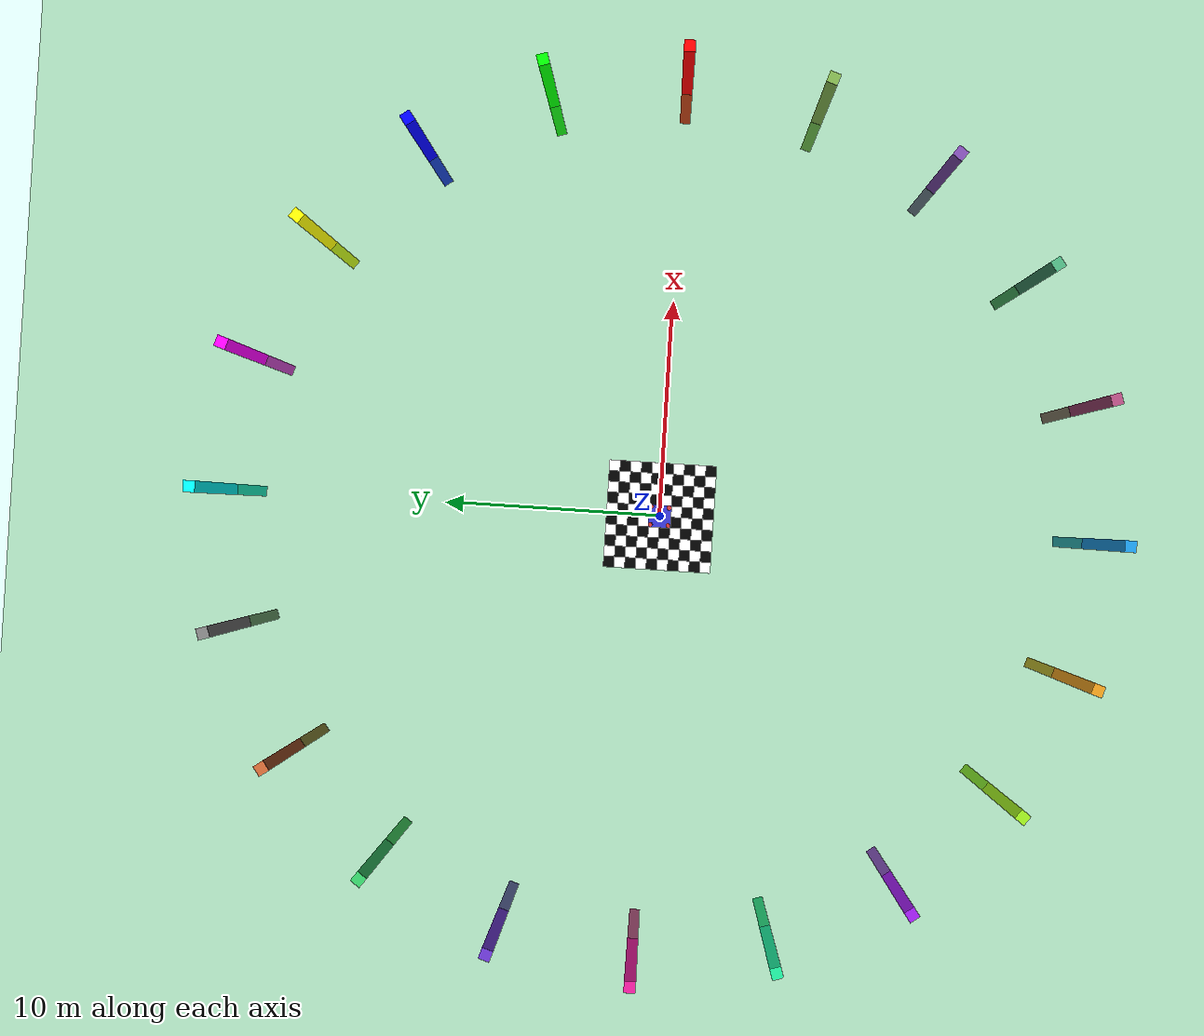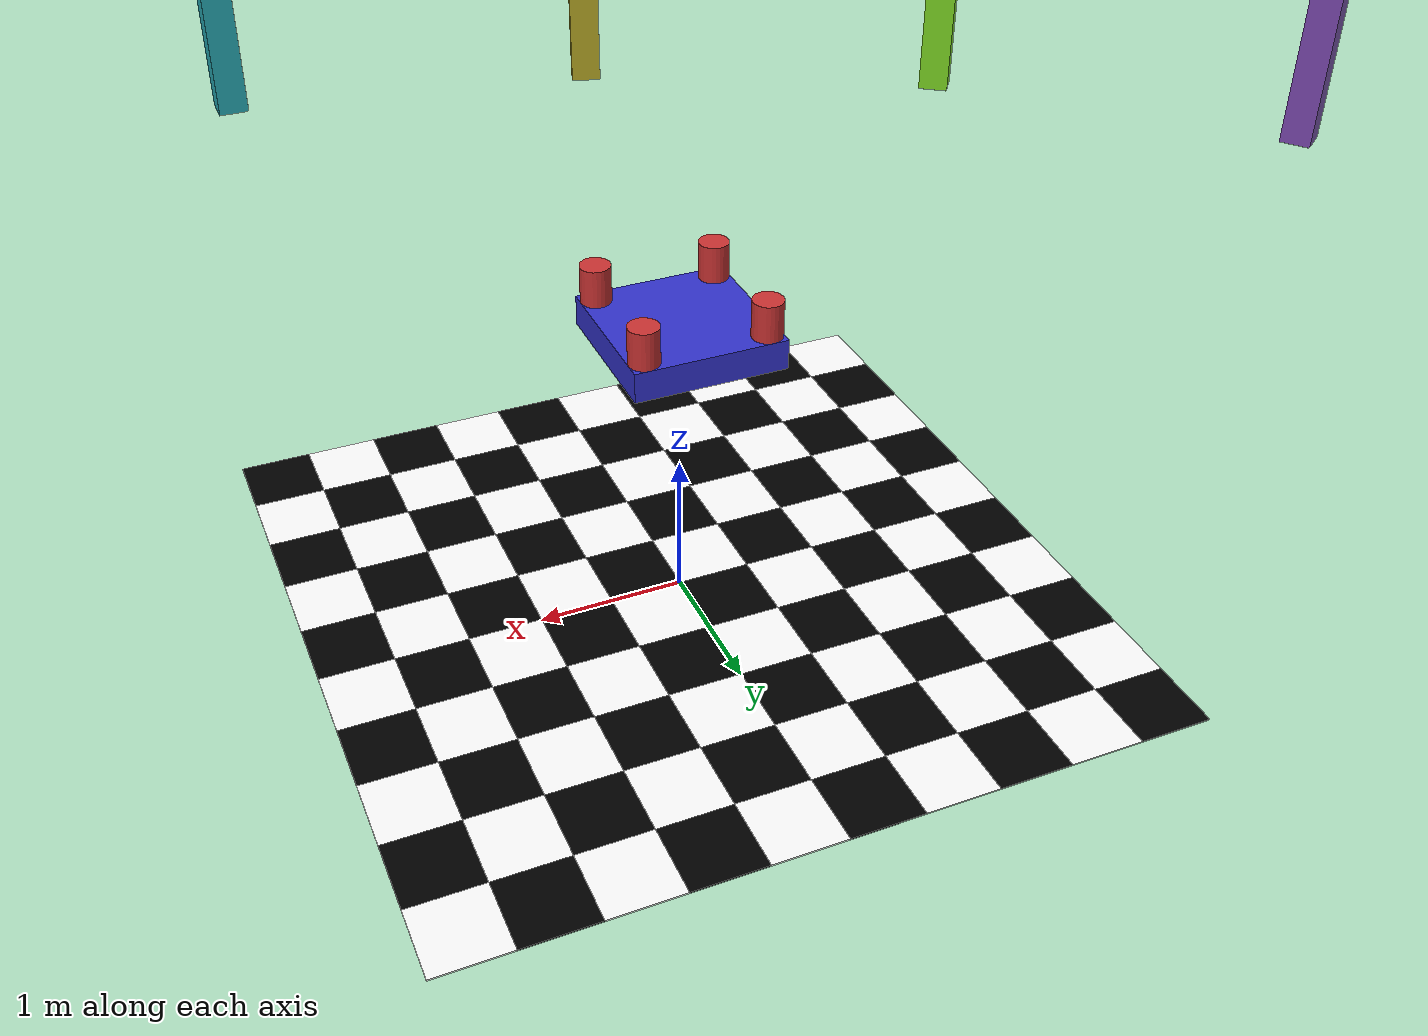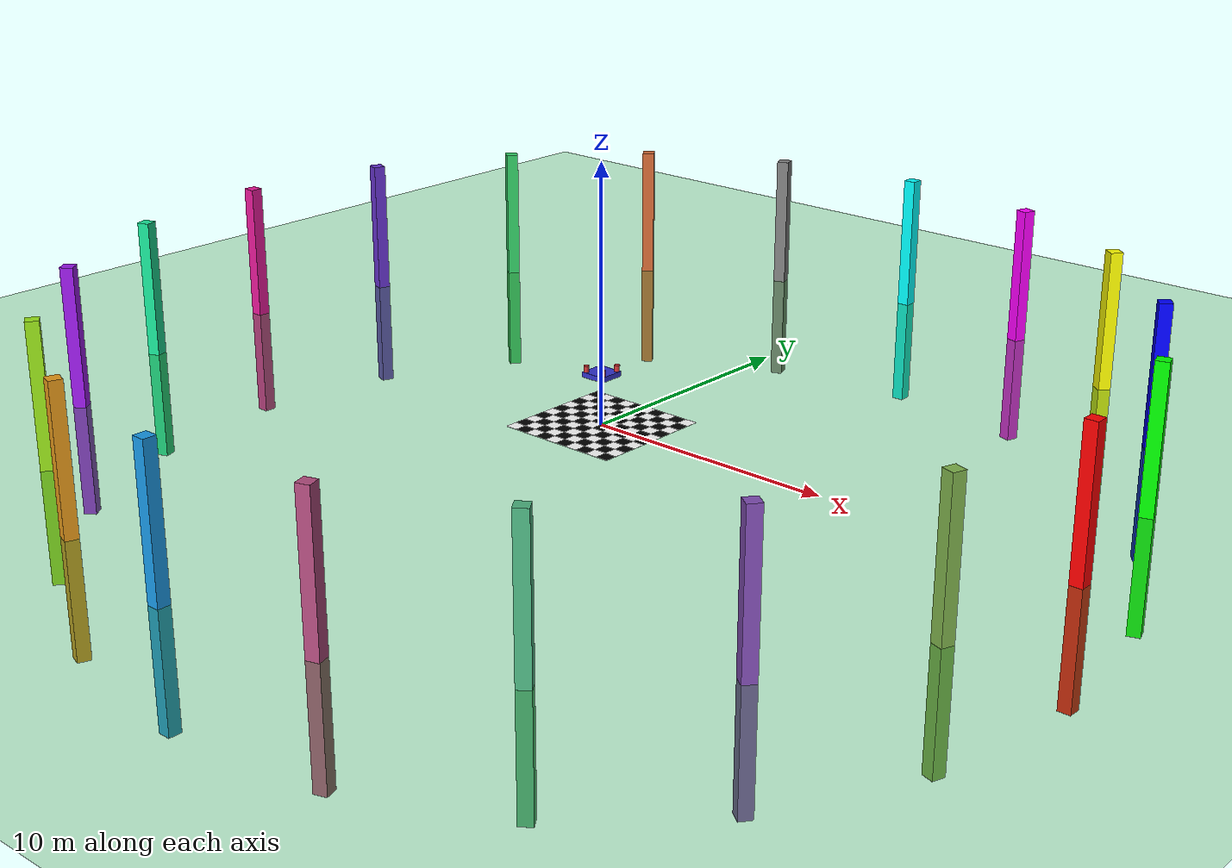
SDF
<?xml version="1.0" ?>
<sdf version="1.8">
  <world name="movable_shapes_world">

  <light type="directional" name="sun">
          <cast_shadows>true</cast_shadows>
          <pose>0 0 10 0 0 0</pose>
          <diffuse>0.8 0.8 0.8 1</diffuse>
          <specular>0.2 0.2 0.2 1</specular>
          <attenuation>
            <range>1000</range>
            <constant>0.9</constant>
            <linear>0.01</linear>
            <quadratic>0.001</quadratic>
          </attenuation>
          <direction>-0.5 0.1 -0.9</direction>
     </light>
    <include>
  <uri>https://fuel.gazebosim.org/1.0/OpenRobotics/models/ground plane</uri>
</include>
    <physics name="1ms" type="ignored">
      <max_step_size>0.01</max_step_size>
      <real_time_factor>1</real_time_factor>
      <real_time_update_rate>100</real_time_update_rate>
    </physics>
    <gravity>0 0 -9.8</gravity>

    <plugin filename="gz-sim-physics-system" name="gz::sim::systems::Physics">
    </plugin>
    <plugin filename="gz-sim-scene-broadcaster-system" name="gz::sim::systems::SceneBroadcaster">
    </plugin>
    <plugin filename="gz-sim-apply-link-wrench-system" name="gz::sim::systems::ApplyLinkWrench">
    </plugin>
    <plugin filename="gz-sim-imu-system" name="gz::sim::systems::Imu"></plugin>
    <plugin filename ="gz-sim-sensors-system"
            name="gz::sim::systems::Sensors">
          </plugin>

        <!-- Solid green ground base -->
<model name="grass_ground">
  <static>true</static>
  <link name="link">
    <collision name="collision">
      <geometry>
        <plane>
          <normal>0 0 1</normal>
          <size>100 100</size>
        </plane>
      </geometry>
    </collision>
    <visual name="visual">
      <geometry>
        <plane>
          <normal>0 0 1</normal>
          <size>100 100</size>
        </plane>
      </geometry>
      <material>
        <ambient>0.1 0.4 0.1 1</ambient>
        <diffuse>0.2 0.6 0.2 1</diffuse>
      </material>
    </visual>
  </link>
</model>

<!-- Checkerboard pattern made of tiny boxes -->
<model name="checkerboard_ground">
  <static>true</static>

  <!-- Row 0 (y = -2.25) -->
<link name="tile_0_0"><pose>-2.25 -2.25 0.005 0 0 0</pose><visual name="vis"><geometry><box><size>0.5 0.5 0.01</size></box></geometry><material><ambient>1 1 1 1</ambient><diffuse>1 1 1 1</diffuse></material></visual></link>
<link name="tile_0_1"><pose>-1.75 -2.25 0.005 0 0 0</pose><visual name="vis"><geometry><box><size>0.5 0.5 0.01</size></box></geometry><material><ambient>0 0 0 1</ambient><diffuse>0 0 0 1</diffuse></material></visual></link>
<link name="tile_0_2"><pose>-1.25 -2.25 0.005 0 0 0</pose><visual name="vis"><geometry><box><size>0.5 0.5 0.01</size></box></geometry><material><ambient>1 1 1 1</ambient><diffuse>1 1 1 1</diffuse></material></visual></link>
<link name="tile_0_3"><pose>-0.75 -2.25 0.005 0 0 0</pose><visual name="vis"><geometry><box><size>0.5 0.5 0.01</size></box></geometry><material><ambient>0 0 0 1</ambient><diffuse>0 0 0 1</diffuse></material></visual></link>
<link name="tile_0_4"><pose>-0.25 -2.25 0.005 0 0 0</pose><visual name="vis"><geometry><box><size>0.5 0.5 0.01</size></box></geometry><material><ambient>1 1 1 1</ambient><diffuse>1 1 1 1</diffuse></material></visual></link>
<link name="tile_0_5"><pose>0.25 -2.25 0.005 0 0 0</pose><visual name="vis"><geometry><box><size>0.5 0.5 0.01</size></box></geometry><material><ambient>0 0 0 1</ambient><diffuse>0 0 0 1</diffuse></material></visual></link>
<link name="tile_0_6"><pose>0.75 -2.25 0.005 0 0 0</pose><visual name="vis"><geometry><box><size>0.5 0.5 0.01</size></box></geometry><material><ambient>1 1 1 1</ambient><diffuse>1 1 1 1</diffuse></material></visual></link>
<link name="tile_0_7"><pose>1.25 -2.25 0.005 0 0 0</pose><visual name="vis"><geometry><box><size>0.5 0.5 0.01</size></box></geometry><material><ambient>0 0 0 1</ambient><diffuse>0 0 0 1</diffuse></material></visual></link>
<link name="tile_0_8"><pose>1.75 -2.25 0.005 0 0 0</pose><visual name="vis"><geometry><box><size>0.5 0.5 0.01</size></box></geometry><material><ambient>1 1 1 1</ambient><diffuse>1 1 1 1</diffuse></material></visual></link>
<link name="tile_0_9"><pose>2.25 -2.25 0.005 0 0 0</pose><visual name="vis"><geometry><box><size>0.5 0.5 0.01</size></box></geometry><material><ambient>0 0 0 1</ambient><diffuse>0 0 0 1</diffuse></material></visual></link>

<!-- Row 1 (y = -1.75) -->
<link name="tile_1_0"><pose>-2.25 -1.75 0.005 0 0 0</pose><visual name="vis"><geometry><box><size>0.5 0.5 0.01</size></box></geometry><material><ambient>0 0 0 1</ambient><diffuse>0 0 0 1</diffuse></material></visual></link>
<link name="tile_1_1"><pose>-1.75 -1.75 0.005 0 0 0</pose><visual name="vis"><geometry><box><size>0.5 0.5 0.01</size></box></geometry><material><ambient>1 1 1 1</ambient><diffuse>1 1 1 1</diffuse></material></visual></link>
<link name="tile_1_2"><pose>-1.25 -1.75 0.005 0 0 0</pose><visual name="vis"><geometry><box><size>0.5 0.5 0.01</size></box></geometry><material><ambient>0 0 0 1</ambient><diffuse>0 0 0 1</diffuse></material></visual></link>
<link name="tile_1_3"><pose>-0.75 -1.75 0.005 0 0 0</pose><visual name="vis"><geometry><box><size>0.5 0.5 0.01</size></box></geometry><material><ambient>1 1 1 1</ambient><diffuse>1 1 1 1</diffuse></material></visual></link>
<link name="tile_1_4"><pose>-0.25 -1.75 0.005 0 0 0</pose><visual name="vis"><geometry><box><size>0.5 0.5 0.01</size></box></geometry><material><ambient>0 0 0 1</ambient><diffuse>0 0 0 1</diffuse></material></visual></link>
<link name="tile_1_5"><pose>0.25 -1.75 0.005 0 0 0</pose><visual name="vis"><geometry><box><size>0.5 0.5 0.01</size></box></geometry><material><ambient>1 1 1 1</ambient><diffuse>1 1 1 1</diffuse></material></visual></link>
<link name="tile_1_6"><pose>0.75 -1.75 0.005 0 0 0</pose><visual name="vis"><geometry><box><size>0.5 0.5 0.01</size></box></geometry><material><ambient>0 0 0 1</ambient><diffuse>0 0 0 1</diffuse></material></visual></link>
<link name="tile_1_7"><pose>1.25 -1.75 0.005 0 0 0</pose><visual name="vis"><geometry><box><size>0.5 0.5 0.01</size></box></geometry><material><ambient>1 1 1 1</ambient><diffuse>1 1 1 1</diffuse></material></visual></link>
<link name="tile_1_8"><pose>1.75 -1.75 0.005 0 0 0</pose><visual name="vis"><geometry><box><size>0.5 0.5 0.01</size></box></geometry><material><ambient>0 0 0 1</ambient><diffuse>0 0 0 1</diffuse></material></visual></link>
<link name="tile_1_9"><pose>2.25 -1.75 0.005 0 0 0</pose><visual name="vis"><geometry><box><size>0.5 0.5 0.01</size></box></geometry><material><ambient>1 1 1 1</ambient><diffuse>1 1 1 1</diffuse></material></visual></link>

<!-- Row 2 (y = -1.25) -->
<link name="tile_2_0"><pose>-2.25 -1.25 0.005 0 0 0</pose><visual name="vis"><geometry><box><size>0.5 0.5 0.01</size></box></geometry><material><ambient>1 1 1 1</ambient><diffuse>1 1 1 1</diffuse></material></visual></link>
<link name="tile_2_1"><pose>-1.75 -1.25 0.005 0 0 0</pose><visual name="vis"><geometry><box><size>0.5 0.5 0.01</size></box></geometry><material><ambient>0 0 0 1</ambient><diffuse>0 0 0 1</diffuse></material></visual></link>
<link name="tile_2_2"><pose>-1.25 -1.25 0.005 0 0 0</pose><visual name="vis"><geometry><box><size>0.5 0.5 0.01</size></box></geometry><material><ambient>1 1 1 1</ambient><diffuse>1 1 1 1</diffuse></material></visual></link>
<link name="tile_2_3"><pose>-0.75 -1.25 0.005 0 0 0</pose><visual name="vis"><geometry><box><size>0.5 0.5 0.01</size></box></geometry><material><ambient>0 0 0 1</ambient><diffuse>0 0 0 1</diffuse></material></visual></link>
<link name="tile_2_4"><pose>-0.25 -1.25 0.005 0 0 0</pose><visual name="vis"><geometry><box><size>0.5 0.5 0.01</size></box></geometry><material><ambient>1 1 1 1</ambient><diffuse>1 1 1 1</diffuse></material></visual></link>
<link name="tile_2_5"><pose>0.25 -1.25 0.005 0 0 0</pose><visual name="vis"><geometry><box><size>0.5 0.5 0.01</size></box></geometry><material><ambient>0 0 0 1</ambient><diffuse>0 0 0 1</diffuse></material></visual></link>
<link name="tile_2_6"><pose>0.75 -1.25 0.005 0 0 0</pose><visual name="vis"><geometry><box><size>0.5 0.5 0.01</size></box></geometry><material><ambient>1 1 1 1</ambient><diffuse>1 1 1 1</diffuse></material></visual></link>
<link name="tile_2_7"><pose>1.25 -1.25 0.005 0 0 0</pose><visual name="vis"><geometry><box><size>0.5 0.5 0.01</size></box></geometry><material><ambient>0 0 0 1</ambient><diffuse>0 0 0 1</diffuse></material></visual></link>
<link name="tile_2_8"><pose>1.75 -1.25 0.005 0 0 0</pose><visual name="vis"><geometry><box><size>0.5 0.5 0.01</size></box></geometry><material><ambient>1 1 1 1</ambient><diffuse>1 1 1 1</diffuse></material></visual></link>
<link name="tile_2_9"><pose>2.25 -1.25 0.005 0 0 0</pose><visual name="vis"><geometry><box><size>0.5 0.5 0.01</size></box></geometry><material><ambient>0 0 0 1</ambient><diffuse>0 0 0 1</diffuse></material></visual></link>

<!-- Row 3 (y = -0.75) -->
<link name="tile_3_0"><pose>-2.25 -0.75 0.005 0 0 0</pose><visual name="vis"><geometry><box><size>0.5 0.5 0.01</size></box></geometry><material><ambient>0 0 0 1</ambient><diffuse>0 0 0 1</diffuse></material></visual></link>
<link name="tile_3_1"><pose>-1.75 -0.75 0.005 0 0 0</pose><visual name="vis"><geometry><box><size>0.5 0.5 0.01</size></box></geometry><material><ambient>1 1 1 1</ambient><diffuse>1 1 1 1</diffuse></material></visual></link>
<link name="tile_3_2"><pose>-1.25 -0.75 0.005 0 0 0</pose><visual name="vis"><geometry><box><size>0.5 0.5 0.01</size></box></geometry><material><ambient>0 0 0 1</ambient><diffuse>0 0 0 1</diffuse></material></visual></link>
<link name="tile_3_3"><pose>-0.75 -0.75 0.005 0 0 0</pose><visual name="vis"><geometry><box><size>0.5 0.5 0.01</size></box></geometry><material><ambient>1 1 1 1</ambient><diffuse>1 1 1 1</diffuse></material></visual></link>
<link name="tile_3_4"><pose>-0.25 -0.75 0.005 0 0 0</pose><visual name="vis"><geometry><box><size>0.5 0.5 0.01</size></box></geometry><material><ambient>0 0 0 1</ambient><diffuse>0 0 0 1</diffuse></material></visual></link>
<link name="tile_3_5"><pose>0.25 -0.75 0.005 0 0 0</pose><visual name="vis"><geometry><box><size>0.5 0.5 0.01</size></box></geometry><material><ambient>1 1 1 1</ambient><diffuse>1 1 1 1</diffuse></material></visual></link>
<link name="tile_3_6"><pose>0.75 -0.75 0.005 0 0 0</pose><visual name="vis"><geometry><box><size>0.5 0.5 0.01</size></box></geometry><material><ambient>0 0 0 1</ambient><diffuse>0 0 0 1</diffuse></material></visual></link>
<link name="tile_3_7"><pose>1.25 -0.75 0.005 0 0 0</pose><visual name="vis"><geometry><box><size>0.5 0.5 0.01</size></box></geometry><material><ambient>1 1 1 1</ambient><diffuse>1 1 1 1</diffuse></material></visual></link>
<link name="tile_3_8"><pose>1.75 -0.75 0.005 0 0 0</pose><visual name="vis"><geometry><box><size>0.5 0.5 0.01</size></box></geometry><material><ambient>0 0 0 1</ambient><diffuse>0 0 0 1</diffuse></material></visual></link>
<link name="tile_3_9"><pose>2.25 -0.75 0.005 0 0 0</pose><visual name="vis"><geometry><box><size>0.5 0.5 0.01</size></box></geometry><material><ambient>1 1 1 1</ambient><diffuse>1 1 1 1</diffuse></material></visual></link>

<!-- Row 4 (y = -0.25) -->
<link name="tile_4_0"><pose>-2.25 -0.25 0.005 0 0 0</pose><visual name="vis"><geometry><box><size>0.5 0.5 0.01</size></box></geometry><material><ambient>1 1 1 1</ambient><diffuse>1 1 1 1</diffuse></material></visual></link>
<link name="tile_4_1"><pose>-1.75 -0.25 0.005 0 0 0</pose><visual name="vis"><geometry><box><size>0.5 0.5 0.01</size></box></geometry><material><ambient>0 0 0 1</ambient><diffuse>0 0 0 1</diffuse></material></visual></link>
<link name="tile_4_2"><pose>-1.25 -0.25 0.005 0 0 0</pose><visual name="vis"><geometry><box><size>0.5 0.5 0.01</size></box></geometry><material><ambient>1 1 1 1</ambient><diffuse>1 1 1 1</diffuse></material></visual></link>
<link name="tile_4_3"><pose>-0.75 -0.25 0.005 0 0 0</pose><visual name="vis"><geometry><box><size>0.5 0.5 0.01</size></box></geometry><material><ambient>0 0 0 1</ambient><diffuse>0 0 0 1</diffuse></material></visual></link>
<link name="tile_4_4"><pose>-0.25 -0.25 0.005 0 0 0</pose><visual name="vis"><geometry><box><size>0.5 0.5 0.01</size></box></geometry><material><ambient>1 1 1 1</ambient><diffuse>1 1 1 1</diffuse></material></visual></link>
<link name="tile_4_5"><pose>0.25 -0.25 0.005 0 0 0</pose><visual name="vis"><geometry><box><size>0.5 0.5 0.01</size></box></geometry><material><ambient>0 0 0 1</ambient><diffuse>0 0 0 1</diffuse></material></visual></link>
<link name="tile_4_6"><pose>0.75 -0.25 0.005 0 0 0</pose><visual name="vis"><geometry><box><size>0.5 0.5 0.01</size></box></geometry><material><ambient>1 1 1 1</ambient><diffuse>1 1 1 1</diffuse></material></visual></link>
<link name="tile_4_7"><pose>1.25 -0.25 0.005 0 0 0</pose><visual name="vis"><geometry><box><size>0.5 0.5 0.01</size></box></geometry><material><ambient>0 0 0 1</ambient><diffuse>0 0 0 1</diffuse></material></visual></link>
<link name="tile_4_8"><pose>1.75 -0.25 0.005 0 0 0</pose><visual name="vis"><geometry><box><size>0.5 0.5 0.01</size></box></geometry><material><ambient>1 1 1 1</ambient><diffuse>1 1 1 1</diffuse></material></visual></link>
<link name="tile_4_9"><pose>2.25 -0.25 0.005 0 0 0</pose><visual name="vis"><geometry><box><size>0.5 0.5 0.01</size></box></geometry><material><ambient>0 0 0 1</ambient><diffuse>0 0 0 1</diffuse></material></visual></link>

<!-- Row 5 (y = 0.25) -->
<link name="tile_5_0"><pose>-2.25 0.25 0.005 0 0 0</pose><visual name="vis"><geometry><box><size>0.5 0.5 0.01</size></box></geometry><material><ambient>0 0 0 1</ambient><diffuse>0 0 0 1</diffuse></material></visual></link>
<link name="tile_5_1"><pose>-1.75 0.25 0.005 0 0 0</pose><visual name="vis"><geometry><box><size>0.5 0.5 0.01</size></box></geometry><material><ambient>1 1 1 1</ambient><diffuse>1 1 1 1</diffuse></material></visual></link>
<link name="tile_5_2"><pose>-1.25 0.25 0.005 0 0 0</pose><visual name="vis"><geometry><box><size>0.5 0.5 0.01</size></box></geometry><material><ambient>0 0 0 1</ambient><diffuse>0 0 0 1</diffuse></material></visual></link>
<link name="tile_5_3"><pose>-0.75 0.25 0.005 0 0 0</pose><visual name="vis"><geometry><box><size>0.5 0.5 0.01</size></box></geometry><material><ambient>1 1 1 1</ambient><diffuse>1 1 1 1</diffuse></material></visual></link>
<link name="tile_5_4"><pose>-0.25 0.25 0.005 0 0 0</pose><visual name="vis"><geometry><box><size>0.5 0.5 0.01</size></box></geometry><material><ambient>0 0 0 1</ambient><diffuse>0 0 0 1</diffuse></material></visual></link>
<link name="tile_5_5"><pose>0.25 0.25 0.005 0 0 0</pose><visual name="vis"><geometry><box><size>0.5 0.5 0.01</size></box></geometry><material><ambient>1 1 1 1</ambient><diffuse>1 1 1 1</diffuse></material></visual></link>
<link name="tile_5_6"><pose>0.75 0.25 0.005 0 0 0</pose><visual name="vis"><geometry><box><size>0.5 0.5 0.01</size></box></geometry><material><ambient>0 0 0 1</ambient><diffuse>0 0 0 1</diffuse></material></visual></link>
<link name="tile_5_7"><pose>1.25 0.25 0.005 0 0 0</pose><visual name="vis"><geometry><box><size>0.5 0.5 0.01</size></box></geometry><material><ambient>1 1 1 1</ambient><diffuse>1 1 1 1</diffuse></material></visual></link>
<link name="tile_5_8"><pose>1.75 0.25 0.005 0 0 0</pose><visual name="vis"><geometry><box><size>0.5 0.5 0.01</size></box></geometry><material><ambient>0 0 0 1</ambient><diffuse>0 0 0 1</diffuse></material></visual></link>
<link name="tile_5_9"><pose>2.25 0.25 0.005 0 0 0</pose><visual name="vis"><geometry><box><size>0.5 0.5 0.01</size></box></geometry><material><ambient>1 1 1 1</ambient><diffuse>1 1 1 1</diffuse></material></visual></link>

<!-- Row 6 (y = 0.75) -->
<link name="tile_6_0"><pose>-2.25 0.75 0.005 0 0 0</pose><visual name="vis"><geometry><box><size>0.5 0.5 0.01</size></box></geometry><material><ambient>1 1 1 1</ambient><diffuse>1 1 1 1</diffuse></material></visual></link>
<link name="tile_6_1"><pose>-1.75 0.75 0.005 0 0 0</pose><visual name="vis"><geometry><box><size>0.5 0.5 0.01</size></box></geometry><material><ambient>0 0 0 1</ambient><diffuse>0 0 0 1</diffuse></material></visual></link>
<link name="tile_6_2"><pose>-1.25 0.75 0.005 0 0 0</pose><visual name="vis"><geometry><box><size>0.5 0.5 0.01</size></box></geometry><material><ambient>1 1 1 1</ambient><diffuse>1 1 1 1</diffuse></material></visual></link>
<link name="tile_6_3"><pose>-0.75 0.75 0.005 0 0 0</pose><visual name="vis"><geometry><box><size>0.5 0.5 0.01</size></box></geometry><material><ambient>0 0 0 1</ambient><diffuse>0 0 0 1</diffuse></material></visual></link>
<link name="tile_6_4"><pose>-0.25 0.75 0.005 0 0 0</pose><visual name="vis"><geometry><box><size>0.5 0.5 0.01</size></box></geometry><material><ambient>1 1 1 1</ambient><diffuse>1 1 1 1</diffuse></material></visual></link>
<link name="tile_6_5"><pose>0.25 0.75 0.005 0 0 0</pose><visual name="vis"><geometry><box><size>0.5 0.5 0.01</size></box></geometry><material><ambient>0 0 0 1</ambient><diffuse>0 0 0 1</diffuse></material></visual></link>
<link name="tile_6_6"><pose>0.75 0.75 0.005 0 0 0</pose><visual name="vis"><geometry><box><size>0.5 0.5 0.01</size></box></geometry><material><ambient>1 1 1 1</ambient><diffuse>1 1 1 1</diffuse></material></visual></link>
<link name="tile_6_7"><pose>1.25 0.75 0.005 0 0 0</pose><visual name="vis"><geometry><box><size>0.5 0.5 0.01</size></box></geometry><material><ambient>0 0 0 1</ambient><diffuse>0 0 0 1</diffuse></material></visual></link>
<link name="tile_6_8"><pose>1.75 0.75 0.005 0 0 0</pose><visual name="vis"><geometry><box><size>0.5 0.5 0.01</size></box></geometry><material><ambient>1 1 1 1</ambient><diffuse>1 1 1 1</diffuse></material></visual></link>
<link name="tile_6_9"><pose>2.25 0.75 0.005 0 0 0</pose><visual name="vis"><geometry><box><size>0.5 0.5 0.01</size></box></geometry><material><ambient>0 0 0 1</ambient><diffuse>0 0 0 1</diffuse></material></visual></link>

<!-- Row 7 (y = 1.25) -->
<link name="tile_7_0"><pose>-2.25 1.25 0.005 0 0 0</pose><visual name="vis"><geometry><box><size>0.5 0.5 0.01</size></box></geometry><material><ambient>0 0 0 1</ambient><diffuse>0 0 0 1</diffuse></material></visual></link>
<link name="tile_7_1"><pose>-1.75 1.25 0.005 0 0 0</pose><visual name="vis"><geometry><box><size>0.5 0.5 0.01</size></box></geometry><material><ambient>1 1 1 1</ambient><diffuse>1 1 1 1</diffuse></material></visual></link>
<link name="tile_7_2"><pose>-1.25 1.25 0.005 0 0 0</pose><visual name="vis"><geometry><box><size>0.5 0.5 0.01</size></box></geometry><material><ambient>0 0 0 1</ambient><diffuse>0 0 0 1</diffuse></material></visual></link>
<link name="tile_7_3"><pose>-0.75 1.25 0.005 0 0 0</pose><visual name="vis"><geometry><box><size>0.5 0.5 0.01</size></box></geometry><material><ambient>1 1 1 1</ambient><diffuse>1 1 1 1</diffuse></material></visual></link>
<link name="tile_7_4"><pose>-0.25 1.25 0.005 0 0 0</pose><visual name="vis"><geometry><box><size>0.5 0.5 0.01</size></box></geometry><material><ambient>0 0 0 1</ambient><diffuse>0 0 0 1</diffuse></material></visual></link>
<link name="tile_7_5"><pose>0.25 1.25 0.005 0 0 0</pose><visual name="vis"><geometry><box><size>0.5 0.5 0.01</size></box></geometry><material><ambient>1 1 1 1</ambient><diffuse>1 1 1 1</diffuse></material></visual></link>
<link name="tile_7_6"><pose>0.75 1.25 0.005 0 0 0</pose><visual name="vis"><geometry><box><size>0.5 0.5 0.01</size></box></geometry><material><ambient>0 0 0 1</ambient><diffuse>0 0 0 1</diffuse></material></visual></link>
<link name="tile_7_7"><pose>1.25 1.25 0.005 0 0 0</pose><visual name="vis"><geometry><box><size>0.5 0.5 0.01</size></box></geometry><material><ambient>1 1 1 1</ambient><diffuse>1 1 1 1</diffuse></material></visual></link>
<link name="tile_7_8"><pose>1.75 1.25 0.005 0 0 0</pose><visual name="vis"><geometry><box><size>0.5 0.5 0.01</size></box></geometry><material><ambient>0 0 0 1</ambient><diffuse>0 0 0 1</diffuse></material></visual></link>
<link name="tile_7_9"><pose>2.25 1.25 0.005 0 0 0</pose><visual name="vis"><geometry><box><size>0.5 0.5 0.01</size></box></geometry><material><ambient>1 1 1 1</ambient><diffuse>1 1 1 1</diffuse></material></visual></link>

<!-- Row 8 (y = 1.75) -->
<link name="tile_8_0"><pose>-2.25 1.75 0.005 0 0 0</pose><visual name="vis"><geometry><box><size>0.5 0.5 0.01</size></box></geometry><material><ambient>1 1 1 1</ambient><diffuse>1 1 1 1</diffuse></material></visual></link>
<link name="tile_8_1"><pose>-1.75 1.75 0.005 0 0 0</pose><visual name="vis"><geometry><box><size>0.5 0.5 0.01</size></box></geometry><material><ambient>0 0 0 1</ambient><diffuse>0 0 0 1</diffuse></material></visual></link>
<link name="tile_8_2"><pose>-1.25 1.75 0.005 0 0 0</pose><visual name="vis"><geometry><box><size>0.5 0.5 0.01</size></box></geometry><material><ambient>1 1 1 1</ambient><diffuse>1 1 1 1</diffuse></material></visual></link>
<link name="tile_8_3"><pose>-0.75 1.75 0.005 0 0 0</pose><visual name="vis"><geometry><box><size>0.5 0.5 0.01</size></box></geometry><material><ambient>0 0 0 1</ambient><diffuse>0 0 0 1</diffuse></material></visual></link>
<link name="tile_8_4"><pose>-0.25 1.75 0.005 0 0 0</pose><visual name="vis"><geometry><box><size>0.5 0.5 0.01</size></box></geometry><material><ambient>1 1 1 1</ambient><diffuse>1 1 1 1</diffuse></material></visual></link>
<link name="tile_8_5"><pose>0.25 1.75 0.005 0 0 0</pose><visual name="vis"><geometry><box><size>0.5 0.5 0.01</size></box></geometry><material><ambient>0 0 0 1</ambient><diffuse>0 0 0 1</diffuse></material></visual></link>
<link name="tile_8_6"><pose>0.75 1.75 0.005 0 0 0</pose><visual name="vis"><geometry><box><size>0.5 0.5 0.01</size></box></geometry><material><ambient>1 1 1 1</ambient><diffuse>1 1 1 1</diffuse></material></visual></link>
<link name="tile_8_7"><pose>1.25 1.75 0.005 0 0 0</pose><visual name="vis"><geometry><box><size>0.5 0.5 0.01</size></box></geometry><material><ambient>0 0 0 1</ambient><diffuse>0 0 0 1</diffuse></material></visual></link>
<link name="tile_8_8"><pose>1.75 1.75 0.005 0 0 0</pose><visual name="vis"><geometry><box><size>0.5 0.5 0.01</size></box></geometry><material><ambient>1 1 1 1</ambient><diffuse>1 1 1 1</diffuse></material></visual></link>
<link name="tile_8_9"><pose>2.25 1.75 0.005 0 0 0</pose><visual name="vis"><geometry><box><size>0.5 0.5 0.01</size></box></geometry><material><ambient>0 0 0 1</ambient><diffuse>0 0 0 1</diffuse></material></visual></link>

<!-- Row 9 (y = 2.25) -->
<link name="tile_9_0"><pose>-2.25 2.25 0.005 0 0 0</pose><visual name="vis"><geometry><box><size>0.5 0.5 0.01</size></box></geometry><material><ambient>0 0 0 1</ambient><diffuse>0 0 0 1</diffuse></material></visual></link>
<link name="tile_9_1"><pose>-1.75 2.25 0.005 0 0 0</pose><visual name="vis"><geometry><box><size>0.5 0.5 0.01</size></box></geometry><material><ambient>1 1 1 1</ambient><diffuse>1 1 1 1</diffuse></material></visual></link>
<link name="tile_9_2"><pose>-1.25 2.25 0.005 0 0 0</pose><visual name="vis"><geometry><box><size>0.5 0.5 0.01</size></box></geometry><material><ambient>0 0 0 1</ambient><diffuse>0 0 0 1</diffuse></material></visual></link>
<link name="tile_9_3"><pose>-0.75 2.25 0.005 0 0 0</pose><visual name="vis"><geometry><box><size>0.5 0.5 0.01</size></box></geometry><material><ambient>1 1 1 1</ambient><diffuse>1 1 1 1</diffuse></material></visual></link>
<link name="tile_9_4"><pose>-0.25 2.25 0.005 0 0 0</pose><visual name="vis"><geometry><box><size>0.5 0.5 0.01</size></box></geometry><material><ambient>0 0 0 1</ambient><diffuse>0 0 0 1</diffuse></material></visual></link>
<link name="tile_9_5"><pose>0.25 2.25 0.005 0 0 0</pose><visual name="vis"><geometry><box><size>0.5 0.5 0.01</size></box></geometry><material><ambient>1 1 1 1</ambient><diffuse>1 1 1 1</diffuse></material></visual></link>
<link name="tile_9_6"><pose>0.75 2.25 0.005 0 0 0</pose><visual name="vis"><geometry><box><size>0.5 0.5 0.01</size></box></geometry><material><ambient>0 0 0 1</ambient><diffuse>0 0 0 1</diffuse></material></visual></link>
<link name="tile_9_7"><pose>1.25 2.25 0.005 0 0 0</pose><visual name="vis"><geometry><box><size>0.5 0.5 0.01</size></box></geometry><material><ambient>1 1 1 1</ambient><diffuse>1 1 1 1</diffuse></material></visual></link>
<link name="tile_9_8"><pose>1.75 2.25 0.005 0 0 0</pose><visual name="vis"><geometry><box><size>0.5 0.5 0.01</size></box></geometry><material><ambient>0 0 0 1</ambient><diffuse>0 0 0 1</diffuse></material></visual></link>
<link name="tile_9_9"><pose>2.25 2.25 0.005 0 0 0</pose><visual name="vis"><geometry><box><size>0.5 0.5 0.01</size></box></geometry><material><ambient>1 1 1 1</ambient><diffuse>1 1 1 1</diffuse></material></visual></link>
</model>
  <!-- Row 5 -->
    <model name="circular_box_0"><static>true</static><pose>20.000 0.000 0.5 0 0 0</pose><link name="link"><collision name="collision"><geometry><box><size>0.5 0.5 1.0</size></box></geometry></collision><visual name="visual"><geometry><box><size>0.5 0.5 10.0</size></box></geometry><material><ambient>1 0 0 1</ambient><diffuse>1 0 0 1</diffuse></material></visual></link></model>
    <model name="circular_box_1"><static>true</static><pose>19.021 6.180 0.5 0 0 0.314</pose><link name="link"><collision name="collision"><geometry><box><size>0.5 0.5 1.0</size></box></geometry></collision><visual name="visual"><geometry><box><size>0.5 0.5 10.0</size></box></geometry><material><ambient>0 1 0 1</ambient><diffuse>0 1 0 1</diffuse></material></visual></link></model>
    <model name="circular_box_2"><static>true</static><pose>16.180 11.756 0.5 0 0 0.628</pose><link name="link"><collision name="collision"><geometry><box><size>0.5 0.5 1.0</size></box></geometry></collision><visual name="visual"><geometry><box><size>0.5 0.5 10.0</size></box></geometry><material><ambient>0 0 1 1</ambient><diffuse>0 0 1 1</diffuse></material></visual></link></model>
    <model name="circular_box_3"><static>true</static><pose>11.756 16.180 0.5 0 0 0.942</pose><link name="link"><collision name="collision"><geometry><box><size>0.5 0.5 1.0</size></box></geometry></collision><visual name="visual"><geometry><box><size>0.5 0.5 10.0</size></box></geometry><material><ambient>1 1 0 1</ambient><diffuse>1 1 0 1</diffuse></material></visual></link></model>
    <model name="circular_box_4"><static>true</static><pose>6.180 19.021 0.5 0 0 1.257</pose><link name="link"><collision name="collision"><geometry><box><size>0.5 0.5 1.0</size></box></geometry></collision><visual name="visual"><geometry><box><size>0.5 0.5 10.0</size></box></geometry><material><ambient>1 0 1 1</ambient><diffuse>1 0 1 1</diffuse></material></visual></link></model>
    <model name="circular_box_5"><static>true</static><pose>0.000 20.000 0.5 0 0 1.571</pose><link name="link"><collision name="collision"><geometry><box><size>0.5 0.5 1.0</size></box></geometry></collision><visual name="visual"><geometry><box><size>0.5 0.5 10.0</size></box></geometry><material><ambient>0 1 1 1</ambient><diffuse>0 1 1 1</diffuse></material></visual></link></model>
    <model name="circular_box_6"><static>true</static><pose>-6.180 19.021 0.5 0 0 1.885</pose><link name="link"><collision name="collision"><geometry><box><size>0.5 0.5 1.0</size></box></geometry></collision><visual name="visual"><geometry><box><size>0.5 0.5 10.0</size></box></geometry><material><ambient>0.5 0.5 0.5 1</ambient><diffuse>0.5 0.5 0.5 1</diffuse></material></visual></link></model>
    <model name="circular_box_7"><static>true</static><pose>-11.756 16.180 0.5 0 0 2.199</pose><link name="link"><collision name="collision"><geometry><box><size>0.5 0.5 1.0</size></box></geometry></collision><visual name="visual"><geometry><box><size>0.5 0.5 10.0</size></box></geometry><material><ambient>0.8 0.4 0.2 1</ambient><diffuse>0.8 0.4 0.2 1</diffuse></material></visual></link></model>
    <model name="circular_box_8"><static>true</static><pose>-16.180 11.756 0.5 0 0 2.513</pose><link name="link"><collision name="collision"><geometry><box><size>0.5 0.5 1.0</size></box></geometry></collision><visual name="visual"><geometry><box><size>0.5 0.5 10.0</size></box></geometry><material><ambient>0.2 0.8 0.4 1</ambient><diffuse>0.2 0.8 0.4 1</diffuse></material></visual></link></model>
    <model name="circular_box_9"><static>true</static><pose>-19.021 6.180 0.5 0 0 2.827</pose><link name="link"><collision name="collision"><geometry><box><size>0.5 0.5 1.0</size></box></geometry></collision><visual name="visual"><geometry><box><size>0.5 0.5 10.0</size></box></geometry><material><ambient>0.4 0.2 0.8 1</ambient><diffuse>0.4 0.2 0.8 1</diffuse></material></visual></link></model>
    <model name="circular_box_10"><static>true</static><pose>-20.000 0.000 0.5 0 0 3.142</pose><link name="link"><collision name="collision"><geometry><box><size>0.5 0.5 1.0</size></box></geometry></collision><visual name="visual"><geometry><box><size>0.5 0.5 10.0</size></box></geometry><material><ambient>0.9 0.1 0.6 1</ambient><diffuse>0.9 0.1 0.6 1</diffuse></material></visual></link></model>
    <model name="circular_box_11"><static>true</static><pose>-19.021 -6.180 0.5 0 0 3.456</pose><link name="link"><collision name="collision"><geometry><box><size>0.5 0.5 1.0</size></box></geometry></collision><visual name="visual"><geometry><box><size>0.5 0.5 10.0</size></box></geometry><material><ambient>0.1 0.9 0.6 1</ambient><diffuse>0.1 0.9 0.6 1</diffuse></material></visual></link></model>
    <model name="circular_box_12"><static>true</static><pose>-16.180 -11.756 0.5 0 0 3.770</pose><link name="link"><collision name="collision"><geometry><box><size>0.5 0.5 1.0</size></box></geometry></collision><visual name="visual"><geometry><box><size>0.5 0.5 10.0</size></box></geometry><material><ambient>0.6 0.1 0.9 1</ambient><diffuse>0.6 0.1 0.9 1</diffuse></material></visual></link></model>
    <model name="circular_box_13"><static>true</static><pose>-11.756 -16.180 0.5 0 0 4.084</pose><link name="link"><collision name="collision"><geometry><box><size>0.5 0.5 1.0</size></box></geometry></collision><visual name="visual"><geometry><box><size>0.5 0.5 10.0</size></box></geometry><material><ambient>0.6 0.9 0.1 1</ambient><diffuse>0.6 0.9 0.1 1</diffuse></material></visual></link></model>
    <model name="circular_box_14"><static>true</static><pose>-6.180 -19.021 0.5 0 0 4.398</pose><link name="link"><collision name="collision"><geometry><box><size>0.5 0.5 1.0</size></box></geometry></collision><visual name="visual"><geometry><box><size>0.5 0.5 10.0</size></box></geometry><material><ambient>0.9 0.6 0.1 1</ambient><diffuse>0.9 0.6 0.1 1</diffuse></material></visual></link></model>
    <model name="circular_box_15"><static>true</static><pose>0.000 -20.000 0.5 0 0 4.712</pose><link name="link"><collision name="collision"><geometry><box><size>0.5 0.5 1.0</size></box></geometry></collision><visual name="visual"><geometry><box><size>0.5 0.5 10.0</size></box></geometry><material><ambient>0.1 0.6 0.9 1</ambient><diffuse>0.1 0.6 0.9 1</diffuse></material></visual></link></model>
    <model name="circular_box_16"><static>true</static><pose>6.180 -19.021 0.5 0 0 5.027</pose><link name="link"><collision name="collision"><geometry><box><size>0.5 0.5 1.0</size></box></geometry></collision><visual name="visual"><geometry><box><size>0.5 0.5 10.0</size></box></geometry><material><ambient>0.7 0.3 0.5 1</ambient><diffuse>0.7 0.3 0.5 1</diffuse></material></visual></link></model>
    <model name="circular_box_17"><static>true</static><pose>11.756 -16.180 0.5 0 0 5.341</pose><link name="link"><collision name="collision"><geometry><box><size>0.5 0.5 1.0</size></box></geometry></collision><visual name="visual"><geometry><box><size>0.5 0.5 10.0</size></box></geometry><material><ambient>0.3 0.7 0.5 1</ambient><diffuse>0.3 0.7 0.5 1</diffuse></material></visual></link></model>
    <model name="circular_box_18"><static>true</static><pose>16.180 -11.756 0.5 0 0 5.655</pose><link name="link"><collision name="collision"><geometry><box><size>0.5 0.5 1.0</size></box></geometry></collision><visual name="visual"><geometry><box><size>0.5 0.5 10.0</size></box></geometry><material><ambient>0.5 0.3 0.7 1</ambient><diffuse>0.5 0.3 0.7 1</diffuse></material></visual></link></model>
    <model name="circular_box_19"><static>true</static><pose>19.021 -6.180 0.5 0 0 5.969</pose><link name="link"><collision name="collision"><geometry><box><size>0.5 0.5 1.0</size></box></geometry></collision><visual name="visual"><geometry><box><size>0.5 0.5 10.0</size></box></geometry><material><ambient>0.5 0.7 0.3 1</ambient><diffuse>0.5 0.7 0.3 1</diffuse></material></visual></link></model>

    <!-- Quadcopter Model -->
    <model name="quadcopter">
      <pose>0 0 2 0 0 0</pose>

      <!-- Central Block -->
      <link name="base_link">
        <inertial>
          <mass>0.027</mass>
          <inertia>
            <ixx>1.395e-5</ixx>
            <ixy>0</ixy>
            <ixz>0</ixz>
            <iyy>1.395e-5</iyy>
            <iyz>0</iyz>
            <izz>2.173e-5</izz>
          </inertia>
        </inertial>
        <collision name="base_collision">
          <geometry>
            <box>
              <size>1 1 0.2</size>
            </box>
          </geometry>
        </collision>
        <visual name="base_visual">
          <geometry>
            <box>
              <size>1 1 0.2</size>
            </box>
          </geometry>
          <material>
            <ambient>0.2 0.2 0.8 1</ambient>
            <diffuse>0.2 0.2 0.8 1</diffuse>
          </material>
        </visual>
        <sensor name="imu_sensor" type="imu">
          <always_on>1</always_on>
          <update_rate>50</update_rate>
          <visualize>true</visualize>
          <topic>/imu/data</topic>
        </sensor>
        <sensor name="mono_camera" type="camera">
        <pose>0.3 0 0.05 0 0 0</pose>
        <camera>
          <horizontal_fov>1.5708</horizontal_fov>
          <image>
            <width>320</width>
            <height>240</height>
            <format>L8</format>
          </image>
          <clip>
            <near>0.1</near>
            <far>80</far>
          </clip>
        </camera>
        <always_on>1</always_on>
        <!-- SET TO ZERO -->
        <update_rate>10</update_rate>
      </sensor>
         <sensor name="mono1_camera" type="camera">
        <pose>0.3 0 0.05 0 1.5708  0</pose>
        <camera>
          <horizontal_fov>1.5708</horizontal_fov>
          <image>
            <width>320</width>
            <height>240</height>
            <format>L8</format>
          </image>
          <clip>
            <near>0.1</near>
            <far>100</far>
          </clip>
        </camera>
        <always_on>0</always_on>
        <update_rate>20</update_rate>
      </sensor>
      </link>

      <!-- Propeller Front-Left -->
      <link name="prop_fl">
        <pose>0.4 0.4 0.15 0 0 0</pose>
        <inertial>
          <mass>0.001</mass>
           <inertia>
            <ixx>1.395e-9</ixx>
            <ixy>0</ixy>
            <ixz>0</ixz>
            <iyy>1.395e-9</iyy>
            <iyz>0</iyz>
            <izz>2.173e-9</izz>
          </inertia>
        </inertial>
        <collision name="prop_fl_collision">
          <geometry>
            <cylinder>
              <radius>0.1</radius>
              <length>0.4</length>
            </cylinder>
          </geometry>
        </collision>
        <visual name="prop_fl_visual">
          <geometry>
            <cylinder>
              <radius>0.1</radius>
              <length>0.4</length>
            </cylinder>
          </geometry>
          <material>
            <ambient>0.8 0.2 0.2 1</ambient>
            <diffuse>0.8 0.2 0.2 1</diffuse>
          </material>
        </visual>
      </link>

      <!-- Propeller Front-Right -->
      <link name="prop_fr">
        <pose>0.4 -0.4 0.15 0 0 0</pose>
        <inertial>
          <mass>0.001</mass>
          <inertia>
            <ixx>1.395e-9</ixx>
            <ixy>0</ixy>
            <ixz>0</ixz>
            <iyy>1.395e-9</iyy>
            <iyz>0</iyz>
            <izz>2.173e-9</izz>
          </inertia>
        </inertial>
        <collision name="prop_fr_collision">
          <geometry>
            <cylinder>
              <radius>0.1</radius>
              <length>0.4</length>
            </cylinder>
          </geometry>
        </collision>
        <visual name="prop_fr_visual">
          <geometry>
            <cylinder>
              <radius>0.1</radius>
              <length>0.4</length>
            </cylinder>
          </geometry>
          <material>
            <ambient>0.8 0.2 0.2 1</ambient>
            <diffuse>0.8 0.2 0.2 1</diffuse>
          </material>
        </visual>
      </link>

      <!-- Propeller Back-Left -->
      <link name="prop_bl">
        <pose>-0.4 0.4 0.15 0 0 0</pose>
        <inertial>
          <mass>0.001</mass>
          <inertia>
            <ixx>1.395e-9</ixx>
            <ixy>0</ixy>
            <ixz>0</ixz>
            <iyy>1.395e-9</iyy>
            <iyz>0</iyz>
            <izz>2.173e-9</izz>
          </inertia>
        </inertial>
        <collision name="prop_bl_collision">
          <geometry>
            <cylinder>
              <radius>0.1</radius>
              <length>0.4</length>
            </cylinder>
          </geometry>
        </collision>
        <visual name="prop_bl_visual">
          <geometry>
            <cylinder>
              <radius>0.1</radius>
              <length>0.4</length>
            </cylinder>
          </geometry>
          <material>
            <ambient>0.8 0.2 0.2 1</ambient>
            <diffuse>0.8 0.2 0.2 1</diffuse>
          </material>
        </visual>
      </link>

      <!-- Propeller Back-Right -->
      <link name="prop_br">
        <pose>-0.4 -0.4 0.15 0 0 0</pose>
        <inertial>
          <mass>0.001</mass>
          <inertia>
            <ixx>1.395e-9</ixx>
            <ixy>0</ixy>
            <ixz>0</ixz>
            <iyy>1.395e-9</iyy>
            <iyz>0</iyz>
            <izz>2.173e-9</izz>
          </inertia>
        </inertial>
        <collision name="prop_br_collision">
          <geometry>
            <cylinder>
              <radius>0.1</radius>
              <length>0.4</length>
            </cylinder>
          </geometry>
        </collision>
        <visual name="prop_br_visual">
          <geometry>
            <cylinder>
              <radius>0.1</radius>
              <length>0.4</length>
            </cylinder>
          </geometry>
          <material>
            <ambient>0.8 0.2 0.2 1</ambient>
            <diffuse>0.8 0.2 0.2 1</diffuse>
          </material>
        </visual>
      </link>

      <!-- Fixed Joints -->
      <joint name="joint_fl" type="fixed">
        <parent>base_link</parent>
        <child>prop_fl</child>
      </joint>
      <joint name="joint_fr" type="fixed">
        <parent>base_link</parent>
        <child>prop_fr</child>
      </joint>
      <joint name="joint_bl" type="fixed">
        <parent>base_link</parent>
        <child>prop_bl</child>
      </joint>
      <joint name="joint_br" type="fixed">
        <parent>base_link</parent>
        <child>prop_br</child>
      </joint>

      <!-- Pose Publisher Plugin -->
      <plugin filename="libgz-sim-pose-publisher-system.so"
              name="gz::sim::systems::PosePublisher">
        <publish_world_pose>true</publish_world_pose>
        <update_rate>50</update_rate>
      </plugin>
      <!-- Odometry Publisher Plugin -->
      <plugin filename="libgz-sim-odometry-publisher-system.so"
              name="gz::sim::systems::OdometryPublisher">
        <odom_publish_frequency>100</odom_publish_frequency>
         <dimensions>3</dimensions>
         <robot_base_frame>base_link</robot_base_frame>

      </plugin>

    </model>

  </world>
</sdf>
